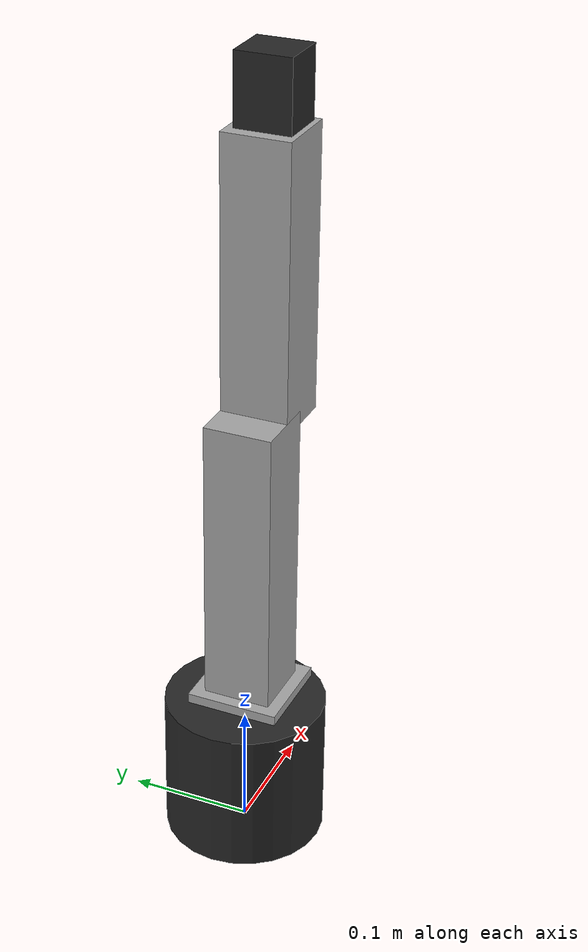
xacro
<?xml version="1.0"?>
<robot xmlns:xacro="http://www.ros.org/wiki/xacro" name="xzb_roarm_m2s">
  <xacro:arg name="tcp_xyz" default="0 0 0"/>
  <xacro:arg name="tcp_rpy" default="0 0 0"/>
  <xacro:arg name="camera_xyz" default="0 0 0"/>
  <xacro:arg name="camera_rpy" default="0 0 0"/>

  <material name="arm_grey"><color rgba="0.65 0.65 0.65 1"/></material>
  <material name="dark"><color rgba="0.15 0.15 0.15 1"/></material>

  <link name="base_link">
    <visual><origin xyz="0 0 0.06"/><geometry><cylinder radius="0.065" length="0.12"/></geometry><material name="dark"/></visual>
    <collision><origin xyz="0 0 0.06"/><geometry><cylinder radius="0.07" length="0.12"/></geometry></collision>
  </link>

  <link name="link1">
    <visual><origin xyz="0 0 -0.04"/><geometry><box size="0.075 0.075 0.09"/></geometry><material name="arm_grey"/></visual>
    <collision><origin xyz="0 0 -0.04"/><geometry><box size="0.08 0.08 0.10"/></geometry></collision>
  </link>
  <joint name="base_link_to_link1" type="revolute">
    <origin xyz="0.0100000008759151 0 0.123059270461044" rpy="0 0 0"/>
    <parent link="base_link"/><child link="link1"/>
    <axis xyz="0 0 -1"/>
    <limit lower="-3.1416" upper="3.1416" effort="5" velocity="1.0"/>
  </joint>

  <link name="link2">
    <visual><origin xyz="0.118 0 0"/><geometry><box size="0.25 0.055 0.055"/></geometry><material name="arm_grey"/></visual>
    <collision><origin xyz="0.118 0 0"/><geometry><box size="0.255 0.065 0.065"/></geometry></collision>
  </link>
  <joint name="link1_to_link2" type="revolute">
    <origin xyz="0 0 0" rpy="-1.5707963267949 -1.5707963267949 0"/>
    <parent link="link1"/><child link="link2"/>
    <axis xyz="0 0 -1"/>
    <limit lower="-1.5708" upper="1.5708" effort="5" velocity="1.0"/>
  </joint>

  <link name="link3">
    <visual><origin xyz="0 -0.11 0"/><geometry><box size="0.055 0.23 0.055"/></geometry><material name="arm_grey"/></visual>
    <collision><origin xyz="0 -0.11 0"/><geometry><box size="0.065 0.24 0.065"/></geometry></collision>
  </link>
  <joint name="link2_to_link3" type="revolute">
    <origin xyz="0.236815132922094 0.0300023995170449 0" rpy="0 0 1.5707963267949"/>
    <parent link="link2"/><child link="link3"/>
    <axis xyz="0 0 1"/>
    <limit lower="-1.0" upper="3.1416" effort="5" velocity="1.0"/>
  </joint>

  <link name="gripper_link">
    <visual><origin xyz="0.03 0 0"/><geometry><box size="0.07 0.045 0.04"/></geometry><material name="dark"/></visual>
    <collision><origin xyz="0.03 0 0"/><geometry><box size="0.075 0.055 0.05"/></geometry></collision>
  </link>
  <joint name="link3_to_gripper_link" type="revolute">
    <origin xyz="0.002906 -0.21599 -0.00066683" rpy="-1.5708 0 -1.5708"/>
    <parent link="link3"/><child link="gripper_link"/>
    <axis xyz="0 0 1"/>
    <limit lower="0" upper="1.5" effort="2" velocity="1.0"/>
  </joint>

  <link name="hand_tcp"/>
  <joint name="link3_to_hand_tcp" type="fixed">
    <origin xyz="0.002 -0.2802 0" rpy="-1.5708 0 -1.5708"/>
    <parent link="link3"/><child link="hand_tcp"/>
  </joint>

  <!-- Calibration hooks. Zero values mean UNCALIBRATED, not measured. -->
  <link name="tcp_calibrated"/>
  <joint name="hand_tcp_to_tcp_calibrated" type="fixed">
    <origin xyz="$(arg tcp_xyz)" rpy="$(arg tcp_rpy)"/>
    <parent link="hand_tcp"/><child link="tcp_calibrated"/>
  </joint>

  <link name="arm_camera_mount_link"/>
  <joint name="hand_tcp_to_arm_camera_mount" type="fixed">
    <origin xyz="$(arg camera_xyz)" rpy="$(arg camera_rpy)"/>
    <parent link="hand_tcp"/><child link="arm_camera_mount_link"/>
  </joint>
</robot>
